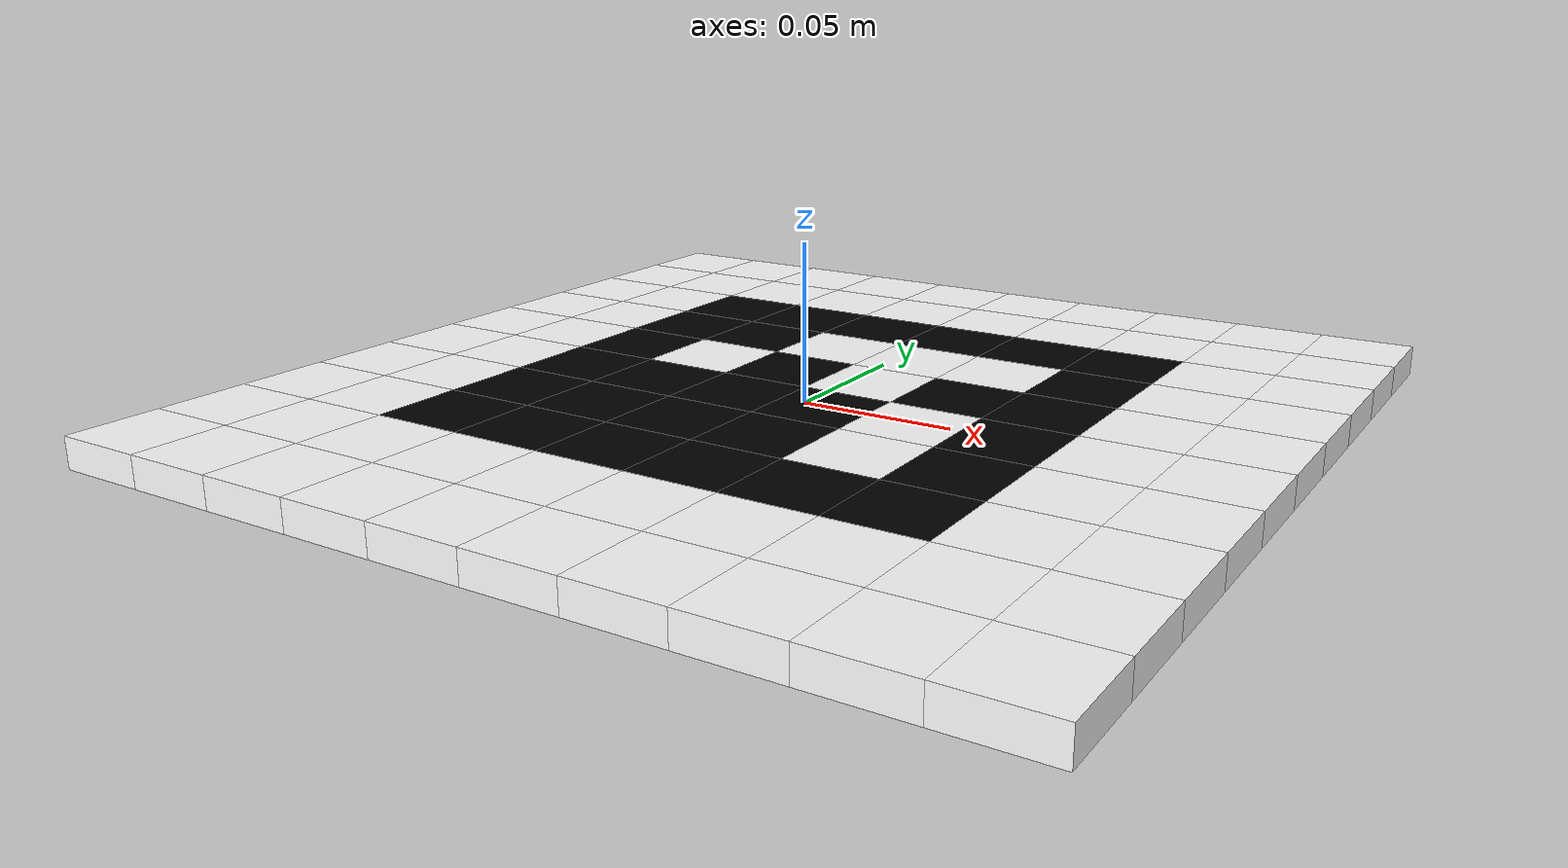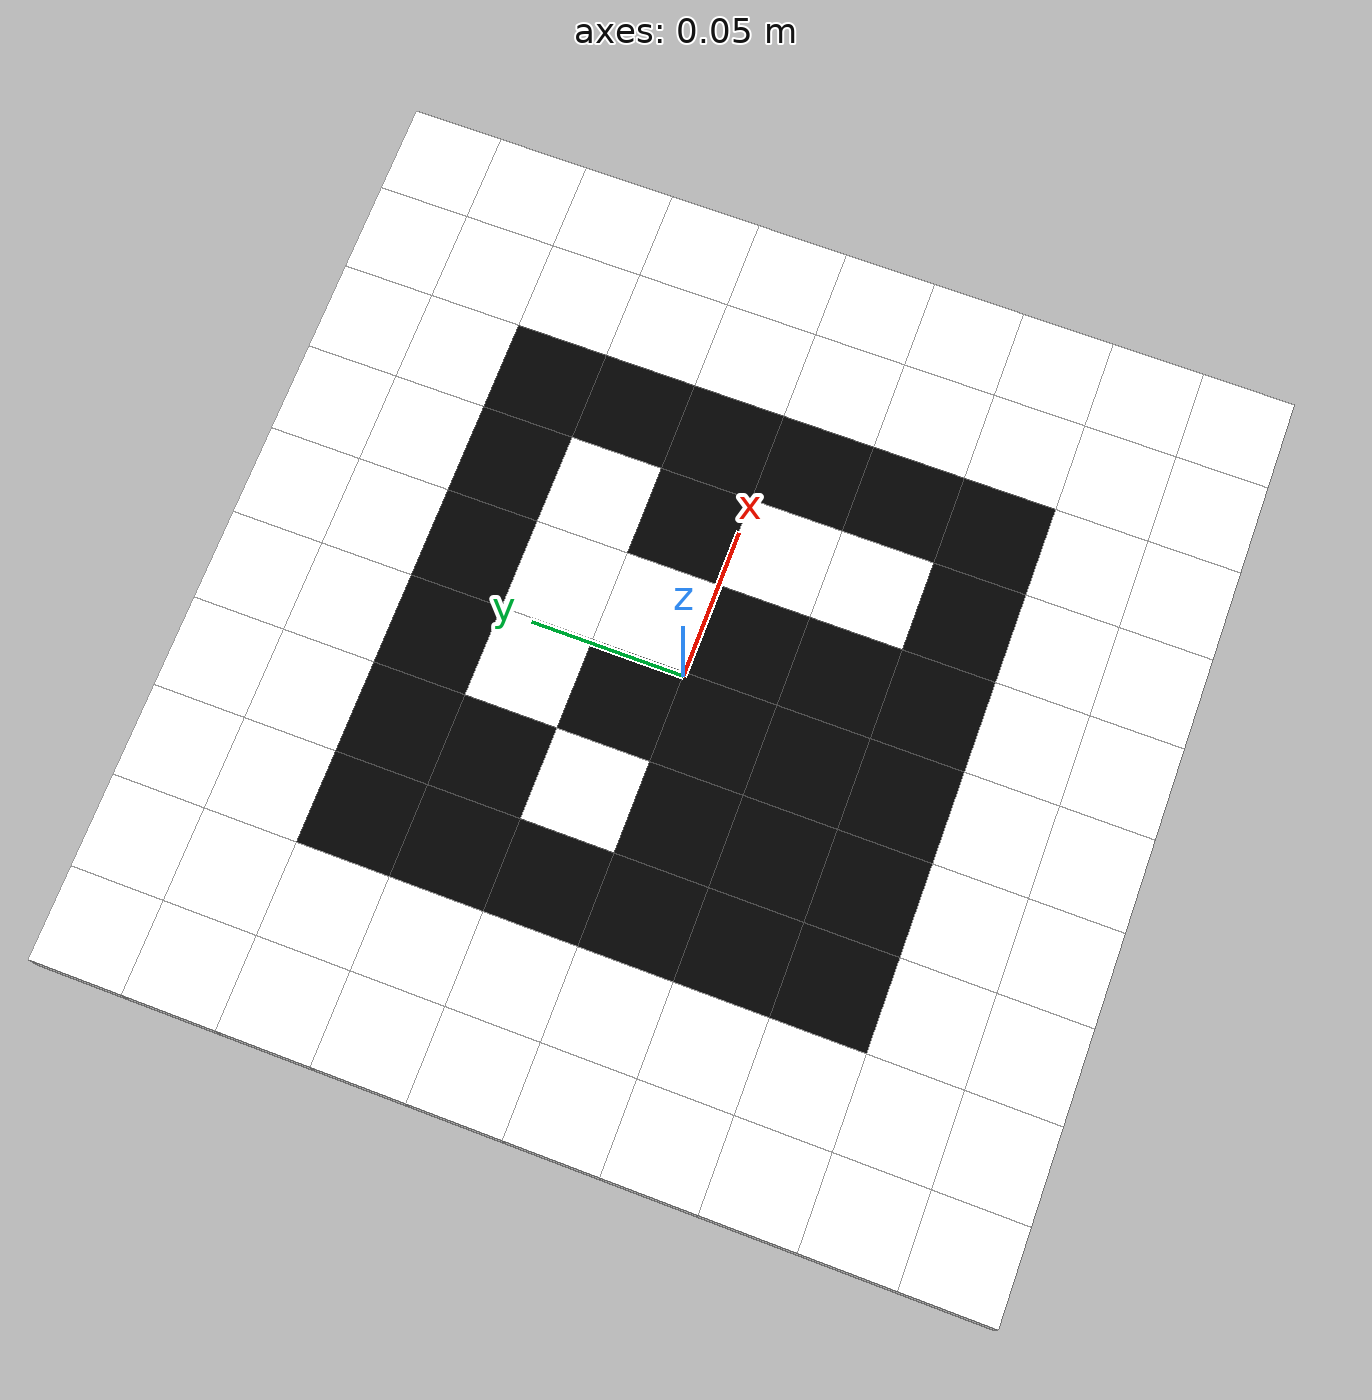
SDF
<sdf version="1.7">
  <model name="aruco_robot">
    <link name="aruco_link">
      <collision name="collision">
        <geometry>
          <box>
            <size>0.005 0.005 0.005</size>
          </box>
        </geometry>
      </collision>
      <inertial>
        <mass>0.0</mass>
        <inertia>
          <ixx>0.0</ixx>
          <iyy>0.0</iyy>
          <izz>0.0</izz>
        </inertia>
      </inertial>
      <visual name="visual">
        <geometry>
          <box>
            <size>0.005 0.005 0.005</size>
          </box>
        </geometry>
        <material>
          <ambient>0 0 0 1</ambient>
          <diffuse>0 0 0 1</diffuse>
        </material>
      </visual>
    </link>

    <link name="arucobox_1_link">
      <pose>-0.135 -0.135 1.653273178848927e-17 3.141592653589793 1.2246467991473532e-16 1.5707963267948968</pose>
      <visual name="visual">
        <geometry>
          <box>
            <size>0.03 0.03 0.01</size>
          </box>
        </geometry>
        <material>
          <ambient>1 1 1 1</ambient>
          <diffuse>1 1 1 1</diffuse>
        </material>
      </visual>
    </link>
    <joint name="arucobox_1_joint" type="fixed">
      <parent>aruco_link</parent>
      <child>arucobox_1_link</child>
    </joint>

    <link name="arucobox_2_link">
      <pose>-0.105 -0.135 1.653273178848927e-17 3.141592653589793 1.2246467991473532e-16 1.5707963267948968</pose>
      <visual name="visual">
        <geometry>
          <box>
            <size>0.03 0.03 0.01</size>
          </box>
        </geometry>
        <material>
          <ambient>1 1 1 1</ambient>
          <diffuse>1 1 1 1</diffuse>
        </material>
      </visual>
    </link>
    <joint name="arucobox_2_joint" type="fixed">
      <parent>aruco_link</parent>
      <child>arucobox_2_link</child>
    </joint>

    <link name="arucobox_3_link">
      <pose>-0.075 -0.135 1.653273178848927e-17 3.141592653589793 1.2246467991473532e-16 1.5707963267948968</pose>
      <visual name="visual">
        <geometry>
          <box>
            <size>0.03 0.03 0.01</size>
          </box>
        </geometry>
        <material>
          <ambient>1 1 1 1</ambient>
          <diffuse>1 1 1 1</diffuse>
        </material>
      </visual>
    </link>
    <joint name="arucobox_3_joint" type="fixed">
      <parent>aruco_link</parent>
      <child>arucobox_3_link</child>
    </joint>

    <link name="arucobox_4_link">
      <pose>-0.045000000000000005 -0.135 1.653273178848927e-17 3.141592653589793 1.2246467991473532e-16 1.5707963267948968</pose>
      <visual name="visual">
        <geometry>
          <box>
            <size>0.03 0.03 0.01</size>
          </box>
        </geometry>
        <material>
          <ambient>1 1 1 1</ambient>
          <diffuse>1 1 1 1</diffuse>
        </material>
      </visual>
    </link>
    <joint name="arucobox_4_joint" type="fixed">
      <parent>aruco_link</parent>
      <child>arucobox_4_link</child>
    </joint>

    <link name="arucobox_5_link">
      <pose>-0.015000000000000005 -0.135 1.653273178848927e-17 3.141592653589793 1.2246467991473532e-16 1.5707963267948968</pose>
      <visual name="visual">
        <geometry>
          <box>
            <size>0.03 0.03 0.01</size>
          </box>
        </geometry>
        <material>
          <ambient>1 1 1 1</ambient>
          <diffuse>1 1 1 1</diffuse>
        </material>
      </visual>
    </link>
    <joint name="arucobox_5_joint" type="fixed">
      <parent>aruco_link</parent>
      <child>arucobox_5_link</child>
    </joint>

    <link name="arucobox_6_link">
      <pose>0.014999999999999994 -0.135 1.653273178848927e-17 3.141592653589793 1.2246467991473532e-16 1.5707963267948968</pose>
      <visual name="visual">
        <geometry>
          <box>
            <size>0.03 0.03 0.01</size>
          </box>
        </geometry>
        <material>
          <ambient>1 1 1 1</ambient>
          <diffuse>1 1 1 1</diffuse>
        </material>
      </visual>
    </link>
    <joint name="arucobox_6_joint" type="fixed">
      <parent>aruco_link</parent>
      <child>arucobox_6_link</child>
    </joint>

    <link name="arucobox_7_link">
      <pose>0.04499999999999999 -0.135 1.653273178848927e-17 3.141592653589793 1.2246467991473532e-16 1.5707963267948968</pose>
      <visual name="visual">
        <geometry>
          <box>
            <size>0.03 0.03 0.01</size>
          </box>
        </geometry>
        <material>
          <ambient>1 1 1 1</ambient>
          <diffuse>1 1 1 1</diffuse>
        </material>
      </visual>
    </link>
    <joint name="arucobox_7_joint" type="fixed">
      <parent>aruco_link</parent>
      <child>arucobox_7_link</child>
    </joint>

    <link name="arucobox_8_link">
      <pose>0.075 -0.135 1.653273178848927e-17 3.141592653589793 1.2246467991473532e-16 1.5707963267948968</pose>
      <visual name="visual">
        <geometry>
          <box>
            <size>0.03 0.03 0.01</size>
          </box>
        </geometry>
        <material>
          <ambient>1 1 1 1</ambient>
          <diffuse>1 1 1 1</diffuse>
        </material>
      </visual>
    </link>
    <joint name="arucobox_8_joint" type="fixed">
      <parent>aruco_link</parent>
      <child>arucobox_8_link</child>
    </joint>

    <link name="arucobox_9_link">
      <pose>0.105 -0.135 1.653273178848927e-17 3.141592653589793 1.2246467991473532e-16 1.5707963267948968</pose>
      <visual name="visual">
        <geometry>
          <box>
            <size>0.03 0.03 0.01</size>
          </box>
        </geometry>
        <material>
          <ambient>1 1 1 1</ambient>
          <diffuse>1 1 1 1</diffuse>
        </material>
      </visual>
    </link>
    <joint name="arucobox_9_joint" type="fixed">
      <parent>aruco_link</parent>
      <child>arucobox_9_link</child>
    </joint>

    <link name="arucobox_10_link">
      <pose>0.135 -0.135 1.653273178848927e-17 3.141592653589793 1.2246467991473532e-16 1.5707963267948968</pose>
      <visual name="visual">
        <geometry>
          <box>
            <size>0.03 0.03 0.01</size>
          </box>
        </geometry>
        <material>
          <ambient>1 1 1 1</ambient>
          <diffuse>1 1 1 1</diffuse>
        </material>
      </visual>
    </link>
    <joint name="arucobox_10_joint" type="fixed">
      <parent>aruco_link</parent>
      <child>arucobox_10_link</child>
    </joint>

    <link name="arucobox_11_link">
      <pose>-0.135 -0.10500000000000002 1.285879139104721e-17 3.141592653589793 1.2246467991473532e-16 1.5707963267948968</pose>
      <visual name="visual">
        <geometry>
          <box>
            <size>0.03 0.03 0.01</size>
          </box>
        </geometry>
        <material>
          <ambient>1 1 1 1</ambient>
          <diffuse>1 1 1 1</diffuse>
        </material>
      </visual>
    </link>
    <joint name="arucobox_11_joint" type="fixed">
      <parent>aruco_link</parent>
      <child>arucobox_11_link</child>
    </joint>

    <link name="arucobox_12_link">
      <pose>-0.10500000000000001 -0.10500000000000001 1.285879139104721e-17 3.141592653589793 1.2246467991473532e-16 1.5707963267948968</pose>
      <visual name="visual">
        <geometry>
          <box>
            <size>0.03 0.03 0.01</size>
          </box>
        </geometry>
        <material>
          <ambient>1 1 1 1</ambient>
          <diffuse>1 1 1 1</diffuse>
        </material>
      </visual>
    </link>
    <joint name="arucobox_12_joint" type="fixed">
      <parent>aruco_link</parent>
      <child>arucobox_12_link</child>
    </joint>

    <link name="arucobox_13_link">
      <pose>-0.07500000000000001 -0.10500000000000001 1.285879139104721e-17 3.141592653589793 1.2246467991473532e-16 1.5707963267948968</pose>
      <visual name="visual">
        <geometry>
          <box>
            <size>0.03 0.03 0.01</size>
          </box>
        </geometry>
        <material>
          <ambient>1 1 1 1</ambient>
          <diffuse>1 1 1 1</diffuse>
        </material>
      </visual>
    </link>
    <joint name="arucobox_13_joint" type="fixed">
      <parent>aruco_link</parent>
      <child>arucobox_13_link</child>
    </joint>

    <link name="arucobox_14_link">
      <pose>-0.045000000000000005 -0.10500000000000001 1.285879139104721e-17 3.141592653589793 1.2246467991473532e-16 1.5707963267948968</pose>
      <visual name="visual">
        <geometry>
          <box>
            <size>0.03 0.03 0.01</size>
          </box>
        </geometry>
        <material>
          <ambient>1 1 1 1</ambient>
          <diffuse>1 1 1 1</diffuse>
        </material>
      </visual>
    </link>
    <joint name="arucobox_14_joint" type="fixed">
      <parent>aruco_link</parent>
      <child>arucobox_14_link</child>
    </joint>

    <link name="arucobox_15_link">
      <pose>-0.015000000000000006 -0.10500000000000001 1.285879139104721e-17 3.141592653589793 1.2246467991473532e-16 1.5707963267948968</pose>
      <visual name="visual">
        <geometry>
          <box>
            <size>0.03 0.03 0.01</size>
          </box>
        </geometry>
        <material>
          <ambient>1 1 1 1</ambient>
          <diffuse>1 1 1 1</diffuse>
        </material>
      </visual>
    </link>
    <joint name="arucobox_15_joint" type="fixed">
      <parent>aruco_link</parent>
      <child>arucobox_15_link</child>
    </joint>

    <link name="arucobox_16_link">
      <pose>0.014999999999999993 -0.10500000000000001 1.285879139104721e-17 3.141592653589793 1.2246467991473532e-16 1.5707963267948968</pose>
      <visual name="visual">
        <geometry>
          <box>
            <size>0.03 0.03 0.01</size>
          </box>
        </geometry>
        <material>
          <ambient>1 1 1 1</ambient>
          <diffuse>1 1 1 1</diffuse>
        </material>
      </visual>
    </link>
    <joint name="arucobox_16_joint" type="fixed">
      <parent>aruco_link</parent>
      <child>arucobox_16_link</child>
    </joint>

    <link name="arucobox_17_link">
      <pose>0.04499999999999999 -0.10500000000000001 1.285879139104721e-17 3.141592653589793 1.2246467991473532e-16 1.5707963267948968</pose>
      <visual name="visual">
        <geometry>
          <box>
            <size>0.03 0.03 0.01</size>
          </box>
        </geometry>
        <material>
          <ambient>1 1 1 1</ambient>
          <diffuse>1 1 1 1</diffuse>
        </material>
      </visual>
    </link>
    <joint name="arucobox_17_joint" type="fixed">
      <parent>aruco_link</parent>
      <child>arucobox_17_link</child>
    </joint>

    <link name="arucobox_18_link">
      <pose>0.07499999999999998 -0.10500000000000001 1.285879139104721e-17 3.141592653589793 1.2246467991473532e-16 1.5707963267948968</pose>
      <visual name="visual">
        <geometry>
          <box>
            <size>0.03 0.03 0.01</size>
          </box>
        </geometry>
        <material>
          <ambient>1 1 1 1</ambient>
          <diffuse>1 1 1 1</diffuse>
        </material>
      </visual>
    </link>
    <joint name="arucobox_18_joint" type="fixed">
      <parent>aruco_link</parent>
      <child>arucobox_18_link</child>
    </joint>

    <link name="arucobox_19_link">
      <pose>0.10499999999999998 -0.10500000000000001 1.285879139104721e-17 3.141592653589793 1.2246467991473532e-16 1.5707963267948968</pose>
      <visual name="visual">
        <geometry>
          <box>
            <size>0.03 0.03 0.01</size>
          </box>
        </geometry>
        <material>
          <ambient>1 1 1 1</ambient>
          <diffuse>1 1 1 1</diffuse>
        </material>
      </visual>
    </link>
    <joint name="arucobox_19_joint" type="fixed">
      <parent>aruco_link</parent>
      <child>arucobox_19_link</child>
    </joint>

    <link name="arucobox_20_link">
      <pose>0.135 -0.105 1.285879139104721e-17 3.141592653589793 1.2246467991473532e-16 1.5707963267948968</pose>
      <visual name="visual">
        <geometry>
          <box>
            <size>0.03 0.03 0.01</size>
          </box>
        </geometry>
        <material>
          <ambient>1 1 1 1</ambient>
          <diffuse>1 1 1 1</diffuse>
        </material>
      </visual>
    </link>
    <joint name="arucobox_20_joint" type="fixed">
      <parent>aruco_link</parent>
      <child>arucobox_20_link</child>
    </joint>

    <link name="arucobox_21_link">
      <pose>-0.135 -0.07500000000000002 9.18485099360515e-18 3.141592653589793 1.2246467991473532e-16 1.5707963267948968</pose>
      <visual name="visual">
        <geometry>
          <box>
            <size>0.03 0.03 0.01</size>
          </box>
        </geometry>
        <material>
          <ambient>1 1 1 1</ambient>
          <diffuse>1 1 1 1</diffuse>
        </material>
      </visual>
    </link>
    <joint name="arucobox_21_joint" type="fixed">
      <parent>aruco_link</parent>
      <child>arucobox_21_link</child>
    </joint>

    <link name="arucobox_22_link">
      <pose>-0.10500000000000001 -0.07500000000000001 9.18485099360515e-18 3.141592653589793 1.2246467991473532e-16 1.5707963267948968</pose>
      <visual name="visual">
        <geometry>
          <box>
            <size>0.03 0.03 0.01</size>
          </box>
        </geometry>
        <material>
          <ambient>1 1 1 1</ambient>
          <diffuse>1 1 1 1</diffuse>
        </material>
      </visual>
    </link>
    <joint name="arucobox_22_joint" type="fixed">
      <parent>aruco_link</parent>
      <child>arucobox_22_link</child>
    </joint>

    <link name="arucobox_23_link">
      <pose>-0.07500000000000001 -0.07500000000000001 9.18485099360515e-18 3.141592653589793 1.2246467991473532e-16 1.5707963267948968</pose>
      <visual name="visual">
        <geometry>
          <box>
            <size>0.03 0.03 0.01</size>
          </box>
        </geometry>
        <material>
          <ambient>0 0 0 1</ambient>
          <diffuse>0 0 0 1</diffuse>
        </material>
      </visual>
    </link>
    <joint name="arucobox_23_joint" type="fixed">
      <parent>aruco_link</parent>
      <child>arucobox_23_link</child>
    </joint>

    <link name="arucobox_24_link">
      <pose>-0.045000000000000005 -0.07500000000000001 9.18485099360515e-18 3.141592653589793 1.2246467991473532e-16 1.5707963267948968</pose>
      <visual name="visual">
        <geometry>
          <box>
            <size>0.03 0.03 0.01</size>
          </box>
        </geometry>
        <material>
          <ambient>0 0 0 1</ambient>
          <diffuse>0 0 0 1</diffuse>
        </material>
      </visual>
    </link>
    <joint name="arucobox_24_joint" type="fixed">
      <parent>aruco_link</parent>
      <child>arucobox_24_link</child>
    </joint>

    <link name="arucobox_25_link">
      <pose>-0.015000000000000008 -0.07500000000000001 9.18485099360515e-18 3.141592653589793 1.2246467991473532e-16 1.5707963267948968</pose>
      <visual name="visual">
        <geometry>
          <box>
            <size>0.03 0.03 0.01</size>
          </box>
        </geometry>
        <material>
          <ambient>0 0 0 1</ambient>
          <diffuse>0 0 0 1</diffuse>
        </material>
      </visual>
    </link>
    <joint name="arucobox_25_joint" type="fixed">
      <parent>aruco_link</parent>
      <child>arucobox_25_link</child>
    </joint>

    <link name="arucobox_26_link">
      <pose>0.01499999999999999 -0.07500000000000001 9.18485099360515e-18 3.141592653589793 1.2246467991473532e-16 1.5707963267948968</pose>
      <visual name="visual">
        <geometry>
          <box>
            <size>0.03 0.03 0.01</size>
          </box>
        </geometry>
        <material>
          <ambient>0 0 0 1</ambient>
          <diffuse>0 0 0 1</diffuse>
        </material>
      </visual>
    </link>
    <joint name="arucobox_26_joint" type="fixed">
      <parent>aruco_link</parent>
      <child>arucobox_26_link</child>
    </joint>

    <link name="arucobox_27_link">
      <pose>0.04499999999999999 -0.07500000000000001 9.18485099360515e-18 3.141592653589793 1.2246467991473532e-16 1.5707963267948968</pose>
      <visual name="visual">
        <geometry>
          <box>
            <size>0.03 0.03 0.01</size>
          </box>
        </geometry>
        <material>
          <ambient>0 0 0 1</ambient>
          <diffuse>0 0 0 1</diffuse>
        </material>
      </visual>
    </link>
    <joint name="arucobox_27_joint" type="fixed">
      <parent>aruco_link</parent>
      <child>arucobox_27_link</child>
    </joint>

    <link name="arucobox_28_link">
      <pose>0.07499999999999998 -0.07500000000000001 9.18485099360515e-18 3.141592653589793 1.2246467991473532e-16 1.5707963267948968</pose>
      <visual name="visual">
        <geometry>
          <box>
            <size>0.03 0.03 0.01</size>
          </box>
        </geometry>
        <material>
          <ambient>0 0 0 1</ambient>
          <diffuse>0 0 0 1</diffuse>
        </material>
      </visual>
    </link>
    <joint name="arucobox_28_joint" type="fixed">
      <parent>aruco_link</parent>
      <child>arucobox_28_link</child>
    </joint>

    <link name="arucobox_29_link">
      <pose>0.10499999999999998 -0.07500000000000001 9.18485099360515e-18 3.141592653589793 1.2246467991473532e-16 1.5707963267948968</pose>
      <visual name="visual">
        <geometry>
          <box>
            <size>0.03 0.03 0.01</size>
          </box>
        </geometry>
        <material>
          <ambient>1 1 1 1</ambient>
          <diffuse>1 1 1 1</diffuse>
        </material>
      </visual>
    </link>
    <joint name="arucobox_29_joint" type="fixed">
      <parent>aruco_link</parent>
      <child>arucobox_29_link</child>
    </joint>

    <link name="arucobox_30_link">
      <pose>0.135 -0.075 9.18485099360515e-18 3.141592653589793 1.2246467991473532e-16 1.5707963267948968</pose>
      <visual name="visual">
        <geometry>
          <box>
            <size>0.03 0.03 0.01</size>
          </box>
        </geometry>
        <material>
          <ambient>1 1 1 1</ambient>
          <diffuse>1 1 1 1</diffuse>
        </material>
      </visual>
    </link>
    <joint name="arucobox_30_joint" type="fixed">
      <parent>aruco_link</parent>
      <child>arucobox_30_link</child>
    </joint>

    <link name="arucobox_31_link">
      <pose>-0.135 -0.04500000000000002 5.510910596163091e-18 3.141592653589793 1.2246467991473532e-16 1.5707963267948968</pose>
      <visual name="visual">
        <geometry>
          <box>
            <size>0.03 0.03 0.01</size>
          </box>
        </geometry>
        <material>
          <ambient>1 1 1 1</ambient>
          <diffuse>1 1 1 1</diffuse>
        </material>
      </visual>
    </link>
    <joint name="arucobox_31_joint" type="fixed">
      <parent>aruco_link</parent>
      <child>arucobox_31_link</child>
    </joint>

    <link name="arucobox_32_link">
      <pose>-0.10500000000000001 -0.04500000000000002 5.510910596163091e-18 3.141592653589793 1.2246467991473532e-16 1.5707963267948968</pose>
      <visual name="visual">
        <geometry>
          <box>
            <size>0.03 0.03 0.01</size>
          </box>
        </geometry>
        <material>
          <ambient>1 1 1 1</ambient>
          <diffuse>1 1 1 1</diffuse>
        </material>
      </visual>
    </link>
    <joint name="arucobox_32_joint" type="fixed">
      <parent>aruco_link</parent>
      <child>arucobox_32_link</child>
    </joint>

    <link name="arucobox_33_link">
      <pose>-0.07500000000000001 -0.04500000000000002 5.510910596163091e-18 3.141592653589793 1.2246467991473532e-16 1.5707963267948968</pose>
      <visual name="visual">
        <geometry>
          <box>
            <size>0.03 0.03 0.01</size>
          </box>
        </geometry>
        <material>
          <ambient>0 0 0 1</ambient>
          <diffuse>0 0 0 1</diffuse>
        </material>
      </visual>
    </link>
    <joint name="arucobox_33_joint" type="fixed">
      <parent>aruco_link</parent>
      <child>arucobox_33_link</child>
    </joint>

    <link name="arucobox_34_link">
      <pose>-0.04500000000000001 -0.04500000000000001 5.510910596163091e-18 3.141592653589793 1.2246467991473532e-16 1.5707963267948968</pose>
      <visual name="visual">
        <geometry>
          <box>
            <size>0.03 0.03 0.01</size>
          </box>
        </geometry>
        <material>
          <ambient>0 0 0 1</ambient>
          <diffuse>0 0 0 1</diffuse>
        </material>
      </visual>
    </link>
    <joint name="arucobox_34_joint" type="fixed">
      <parent>aruco_link</parent>
      <child>arucobox_34_link</child>
    </joint>

    <link name="arucobox_35_link">
      <pose>-0.01500000000000001 -0.04500000000000001 5.510910596163091e-18 3.141592653589793 1.2246467991473532e-16 1.5707963267948968</pose>
      <visual name="visual">
        <geometry>
          <box>
            <size>0.03 0.03 0.01</size>
          </box>
        </geometry>
        <material>
          <ambient>0 0 0 1</ambient>
          <diffuse>0 0 0 1</diffuse>
        </material>
      </visual>
    </link>
    <joint name="arucobox_35_joint" type="fixed">
      <parent>aruco_link</parent>
      <child>arucobox_35_link</child>
    </joint>

    <link name="arucobox_36_link">
      <pose>0.014999999999999989 -0.04500000000000001 5.510910596163091e-18 3.141592653589793 1.2246467991473532e-16 1.5707963267948968</pose>
      <visual name="visual">
        <geometry>
          <box>
            <size>0.03 0.03 0.01</size>
          </box>
        </geometry>
        <material>
          <ambient>0 0 0 1</ambient>
          <diffuse>0 0 0 1</diffuse>
        </material>
      </visual>
    </link>
    <joint name="arucobox_36_joint" type="fixed">
      <parent>aruco_link</parent>
      <child>arucobox_36_link</child>
    </joint>

    <link name="arucobox_37_link">
      <pose>0.044999999999999984 -0.04500000000000001 5.510910596163091e-18 3.141592653589793 1.2246467991473532e-16 1.5707963267948968</pose>
      <visual name="visual">
        <geometry>
          <box>
            <size>0.03 0.03 0.01</size>
          </box>
        </geometry>
        <material>
          <ambient>1 1 1 1</ambient>
          <diffuse>1 1 1 1</diffuse>
        </material>
      </visual>
    </link>
    <joint name="arucobox_37_joint" type="fixed">
      <parent>aruco_link</parent>
      <child>arucobox_37_link</child>
    </joint>

    <link name="arucobox_38_link">
      <pose>0.07499999999999998 -0.045000000000000005 5.510910596163091e-18 3.141592653589793 1.2246467991473532e-16 1.5707963267948968</pose>
      <visual name="visual">
        <geometry>
          <box>
            <size>0.03 0.03 0.01</size>
          </box>
        </geometry>
        <material>
          <ambient>0 0 0 1</ambient>
          <diffuse>0 0 0 1</diffuse>
        </material>
      </visual>
    </link>
    <joint name="arucobox_38_joint" type="fixed">
      <parent>aruco_link</parent>
      <child>arucobox_38_link</child>
    </joint>

    <link name="arucobox_39_link">
      <pose>0.10499999999999998 -0.045000000000000005 5.510910596163091e-18 3.141592653589793 1.2246467991473532e-16 1.5707963267948968</pose>
      <visual name="visual">
        <geometry>
          <box>
            <size>0.03 0.03 0.01</size>
          </box>
        </geometry>
        <material>
          <ambient>1 1 1 1</ambient>
          <diffuse>1 1 1 1</diffuse>
        </material>
      </visual>
    </link>
    <joint name="arucobox_39_joint" type="fixed">
      <parent>aruco_link</parent>
      <child>arucobox_39_link</child>
    </joint>

    <link name="arucobox_40_link">
      <pose>0.135 -0.045000000000000005 5.510910596163091e-18 3.141592653589793 1.2246467991473532e-16 1.5707963267948968</pose>
      <visual name="visual">
        <geometry>
          <box>
            <size>0.03 0.03 0.01</size>
          </box>
        </geometry>
        <material>
          <ambient>1 1 1 1</ambient>
          <diffuse>1 1 1 1</diffuse>
        </material>
      </visual>
    </link>
    <joint name="arucobox_40_joint" type="fixed">
      <parent>aruco_link</parent>
      <child>arucobox_40_link</child>
    </joint>

    <link name="arucobox_41_link">
      <pose>-0.135 -0.015000000000000022 1.8369701987210315e-18 3.141592653589793 1.2246467991473532e-16 1.5707963267948968</pose>
      <visual name="visual">
        <geometry>
          <box>
            <size>0.03 0.03 0.01</size>
          </box>
        </geometry>
        <material>
          <ambient>1 1 1 1</ambient>
          <diffuse>1 1 1 1</diffuse>
        </material>
      </visual>
    </link>
    <joint name="arucobox_41_joint" type="fixed">
      <parent>aruco_link</parent>
      <child>arucobox_41_link</child>
    </joint>

    <link name="arucobox_42_link">
      <pose>-0.10500000000000001 -0.01500000000000002 1.8369701987210315e-18 3.141592653589793 1.2246467991473532e-16 1.5707963267948968</pose>
      <visual name="visual">
        <geometry>
          <box>
            <size>0.03 0.03 0.01</size>
          </box>
        </geometry>
        <material>
          <ambient>1 1 1 1</ambient>
          <diffuse>1 1 1 1</diffuse>
        </material>
      </visual>
    </link>
    <joint name="arucobox_42_joint" type="fixed">
      <parent>aruco_link</parent>
      <child>arucobox_42_link</child>
    </joint>

    <link name="arucobox_43_link">
      <pose>-0.07500000000000001 -0.015000000000000019 1.8369701987210315e-18 3.141592653589793 1.2246467991473532e-16 1.5707963267948968</pose>
      <visual name="visual">
        <geometry>
          <box>
            <size>0.03 0.03 0.01</size>
          </box>
        </geometry>
        <material>
          <ambient>0 0 0 1</ambient>
          <diffuse>0 0 0 1</diffuse>
        </material>
      </visual>
    </link>
    <joint name="arucobox_43_joint" type="fixed">
      <parent>aruco_link</parent>
      <child>arucobox_43_link</child>
    </joint>

    <link name="arucobox_44_link">
      <pose>-0.04500000000000001 -0.015000000000000017 1.8369701987210315e-18 3.141592653589793 1.2246467991473532e-16 1.5707963267948968</pose>
      <visual name="visual">
        <geometry>
          <box>
            <size>0.03 0.03 0.01</size>
          </box>
        </geometry>
        <material>
          <ambient>0 0 0 1</ambient>
          <diffuse>0 0 0 1</diffuse>
        </material>
      </visual>
    </link>
    <joint name="arucobox_44_joint" type="fixed">
      <parent>aruco_link</parent>
      <child>arucobox_44_link</child>
    </joint>

    <link name="arucobox_45_link">
      <pose>-0.015000000000000012 -0.015000000000000015 1.8369701987210315e-18 3.141592653589793 1.2246467991473532e-16 1.5707963267948968</pose>
      <visual name="visual">
        <geometry>
          <box>
            <size>0.03 0.03 0.01</size>
          </box>
        </geometry>
        <material>
          <ambient>0 0 0 1</ambient>
          <diffuse>0 0 0 1</diffuse>
        </material>
      </visual>
    </link>
    <joint name="arucobox_45_joint" type="fixed">
      <parent>aruco_link</parent>
      <child>arucobox_45_link</child>
    </joint>

    <link name="arucobox_46_link">
      <pose>0.014999999999999987 -0.015000000000000012 1.8369701987210315e-18 3.141592653589793 1.2246467991473532e-16 1.5707963267948968</pose>
      <visual name="visual">
        <geometry>
          <box>
            <size>0.03 0.03 0.01</size>
          </box>
        </geometry>
        <material>
          <ambient>0 0 0 1</ambient>
          <diffuse>0 0 0 1</diffuse>
        </material>
      </visual>
    </link>
    <joint name="arucobox_46_joint" type="fixed">
      <parent>aruco_link</parent>
      <child>arucobox_46_link</child>
    </joint>

    <link name="arucobox_47_link">
      <pose>0.044999999999999984 -0.01500000000000001 1.8369701987210315e-18 3.141592653589793 1.2246467991473532e-16 1.5707963267948968</pose>
      <visual name="visual">
        <geometry>
          <box>
            <size>0.03 0.03 0.01</size>
          </box>
        </geometry>
        <material>
          <ambient>1 1 1 1</ambient>
          <diffuse>1 1 1 1</diffuse>
        </material>
      </visual>
    </link>
    <joint name="arucobox_47_joint" type="fixed">
      <parent>aruco_link</parent>
      <child>arucobox_47_link</child>
    </joint>

    <link name="arucobox_48_link">
      <pose>0.07499999999999998 -0.015000000000000008 1.8369701987210315e-18 3.141592653589793 1.2246467991473532e-16 1.5707963267948968</pose>
      <visual name="visual">
        <geometry>
          <box>
            <size>0.03 0.03 0.01</size>
          </box>
        </geometry>
        <material>
          <ambient>0 0 0 1</ambient>
          <diffuse>0 0 0 1</diffuse>
        </material>
      </visual>
    </link>
    <joint name="arucobox_48_joint" type="fixed">
      <parent>aruco_link</parent>
      <child>arucobox_48_link</child>
    </joint>

    <link name="arucobox_49_link">
      <pose>0.10499999999999998 -0.015000000000000006 1.8369701987210315e-18 3.141592653589793 1.2246467991473532e-16 1.5707963267948968</pose>
      <visual name="visual">
        <geometry>
          <box>
            <size>0.03 0.03 0.01</size>
          </box>
        </geometry>
        <material>
          <ambient>1 1 1 1</ambient>
          <diffuse>1 1 1 1</diffuse>
        </material>
      </visual>
    </link>
    <joint name="arucobox_49_joint" type="fixed">
      <parent>aruco_link</parent>
      <child>arucobox_49_link</child>
    </joint>

    <link name="arucobox_50_link">
      <pose>0.135 -0.015000000000000005 1.8369701987210315e-18 3.141592653589793 1.2246467991473532e-16 1.5707963267948968</pose>
      <visual name="visual">
        <geometry>
          <box>
            <size>0.03 0.03 0.01</size>
          </box>
        </geometry>
        <material>
          <ambient>1 1 1 1</ambient>
          <diffuse>1 1 1 1</diffuse>
        </material>
      </visual>
    </link>
    <joint name="arucobox_50_joint" type="fixed">
      <parent>aruco_link</parent>
      <child>arucobox_50_link</child>
    </joint>

    <link name="arucobox_51_link">
      <pose>-0.135 0.014999999999999977 -1.836970198721028e-18 3.141592653589793 1.2246467991473532e-16 1.5707963267948968</pose>
      <visual name="visual">
        <geometry>
          <box>
            <size>0.03 0.03 0.01</size>
          </box>
        </geometry>
        <material>
          <ambient>1 1 1 1</ambient>
          <diffuse>1 1 1 1</diffuse>
        </material>
      </visual>
    </link>
    <joint name="arucobox_51_joint" type="fixed">
      <parent>aruco_link</parent>
      <child>arucobox_51_link</child>
    </joint>

    <link name="arucobox_52_link">
      <pose>-0.10500000000000001 0.014999999999999979 -1.836970198721028e-18 3.141592653589793 1.2246467991473532e-16 1.5707963267948968</pose>
      <visual name="visual">
        <geometry>
          <box>
            <size>0.03 0.03 0.01</size>
          </box>
        </geometry>
        <material>
          <ambient>1 1 1 1</ambient>
          <diffuse>1 1 1 1</diffuse>
        </material>
      </visual>
    </link>
    <joint name="arucobox_52_joint" type="fixed">
      <parent>aruco_link</parent>
      <child>arucobox_52_link</child>
    </joint>

    <link name="arucobox_53_link">
      <pose>-0.07500000000000001 0.01499999999999998 -1.836970198721028e-18 3.141592653589793 1.2246467991473532e-16 1.5707963267948968</pose>
      <visual name="visual">
        <geometry>
          <box>
            <size>0.03 0.03 0.01</size>
          </box>
        </geometry>
        <material>
          <ambient>0 0 0 1</ambient>
          <diffuse>0 0 0 1</diffuse>
        </material>
      </visual>
    </link>
    <joint name="arucobox_53_joint" type="fixed">
      <parent>aruco_link</parent>
      <child>arucobox_53_link</child>
    </joint>

    <link name="arucobox_54_link">
      <pose>-0.04500000000000001 0.014999999999999982 -1.836970198721028e-18 3.141592653589793 1.2246467991473532e-16 1.5707963267948968</pose>
      <visual name="visual">
        <geometry>
          <box>
            <size>0.03 0.03 0.01</size>
          </box>
        </geometry>
        <material>
          <ambient>1 1 1 1</ambient>
          <diffuse>1 1 1 1</diffuse>
        </material>
      </visual>
    </link>
    <joint name="arucobox_54_joint" type="fixed">
      <parent>aruco_link</parent>
      <child>arucobox_54_link</child>
    </joint>

    <link name="arucobox_55_link">
      <pose>-0.015000000000000015 0.014999999999999984 -1.836970198721028e-18 3.141592653589793 1.2246467991473532e-16 1.5707963267948968</pose>
      <visual name="visual">
        <geometry>
          <box>
            <size>0.03 0.03 0.01</size>
          </box>
        </geometry>
        <material>
          <ambient>0 0 0 1</ambient>
          <diffuse>0 0 0 1</diffuse>
        </material>
      </visual>
    </link>
    <joint name="arucobox_55_joint" type="fixed">
      <parent>aruco_link</parent>
      <child>arucobox_55_link</child>
    </joint>

    <link name="arucobox_56_link">
      <pose>0.014999999999999984 0.014999999999999987 -1.836970198721028e-18 3.141592653589793 1.2246467991473532e-16 1.5707963267948968</pose>
      <visual name="visual">
        <geometry>
          <box>
            <size>0.03 0.03 0.01</size>
          </box>
        </geometry>
        <material>
          <ambient>1 1 1 1</ambient>
          <diffuse>1 1 1 1</diffuse>
        </material>
      </visual>
    </link>
    <joint name="arucobox_56_joint" type="fixed">
      <parent>aruco_link</parent>
      <child>arucobox_56_link</child>
    </joint>

    <link name="arucobox_57_link">
      <pose>0.044999999999999984 0.014999999999999989 -1.836970198721028e-18 3.141592653589793 1.2246467991473532e-16 1.5707963267948968</pose>
      <visual name="visual">
        <geometry>
          <box>
            <size>0.03 0.03 0.01</size>
          </box>
        </geometry>
        <material>
          <ambient>0 0 0 1</ambient>
          <diffuse>0 0 0 1</diffuse>
        </material>
      </visual>
    </link>
    <joint name="arucobox_57_joint" type="fixed">
      <parent>aruco_link</parent>
      <child>arucobox_57_link</child>
    </joint>

    <link name="arucobox_58_link">
      <pose>0.07499999999999998 0.01499999999999999 -1.836970198721028e-18 3.141592653589793 1.2246467991473532e-16 1.5707963267948968</pose>
      <visual name="visual">
        <geometry>
          <box>
            <size>0.03 0.03 0.01</size>
          </box>
        </geometry>
        <material>
          <ambient>0 0 0 1</ambient>
          <diffuse>0 0 0 1</diffuse>
        </material>
      </visual>
    </link>
    <joint name="arucobox_58_joint" type="fixed">
      <parent>aruco_link</parent>
      <child>arucobox_58_link</child>
    </joint>

    <link name="arucobox_59_link">
      <pose>0.10499999999999998 0.014999999999999993 -1.836970198721028e-18 3.141592653589793 1.2246467991473532e-16 1.5707963267948968</pose>
      <visual name="visual">
        <geometry>
          <box>
            <size>0.03 0.03 0.01</size>
          </box>
        </geometry>
        <material>
          <ambient>1 1 1 1</ambient>
          <diffuse>1 1 1 1</diffuse>
        </material>
      </visual>
    </link>
    <joint name="arucobox_59_joint" type="fixed">
      <parent>aruco_link</parent>
      <child>arucobox_59_link</child>
    </joint>

    <link name="arucobox_60_link">
      <pose>0.135 0.014999999999999994 -1.836970198721028e-18 3.141592653589793 1.2246467991473532e-16 1.5707963267948968</pose>
      <visual name="visual">
        <geometry>
          <box>
            <size>0.03 0.03 0.01</size>
          </box>
        </geometry>
        <material>
          <ambient>1 1 1 1</ambient>
          <diffuse>1 1 1 1</diffuse>
        </material>
      </visual>
    </link>
    <joint name="arucobox_60_joint" type="fixed">
      <parent>aruco_link</parent>
      <child>arucobox_60_link</child>
    </joint>

    <link name="arucobox_61_link">
      <pose>-0.135 0.04499999999999998 -5.510910596163087e-18 3.141592653589793 1.2246467991473532e-16 1.5707963267948968</pose>
      <visual name="visual">
        <geometry>
          <box>
            <size>0.03 0.03 0.01</size>
          </box>
        </geometry>
        <material>
          <ambient>1 1 1 1</ambient>
          <diffuse>1 1 1 1</diffuse>
        </material>
      </visual>
    </link>
    <joint name="arucobox_61_joint" type="fixed">
      <parent>aruco_link</parent>
      <child>arucobox_61_link</child>
    </joint>

    <link name="arucobox_62_link">
      <pose>-0.10500000000000001 0.04499999999999998 -5.510910596163087e-18 3.141592653589793 1.2246467991473532e-16 1.5707963267948968</pose>
      <visual name="visual">
        <geometry>
          <box>
            <size>0.03 0.03 0.01</size>
          </box>
        </geometry>
        <material>
          <ambient>1 1 1 1</ambient>
          <diffuse>1 1 1 1</diffuse>
        </material>
      </visual>
    </link>
    <joint name="arucobox_62_joint" type="fixed">
      <parent>aruco_link</parent>
      <child>arucobox_62_link</child>
    </joint>

    <link name="arucobox_63_link">
      <pose>-0.07500000000000001 0.04499999999999998 -5.510910596163087e-18 3.141592653589793 1.2246467991473532e-16 1.5707963267948968</pose>
      <visual name="visual">
        <geometry>
          <box>
            <size>0.03 0.03 0.01</size>
          </box>
        </geometry>
        <material>
          <ambient>0 0 0 1</ambient>
          <diffuse>0 0 0 1</diffuse>
        </material>
      </visual>
    </link>
    <joint name="arucobox_63_joint" type="fixed">
      <parent>aruco_link</parent>
      <child>arucobox_63_link</child>
    </joint>

    <link name="arucobox_64_link">
      <pose>-0.04500000000000001 0.044999999999999984 -5.510910596163087e-18 3.141592653589793 1.2246467991473532e-16 1.5707963267948968</pose>
      <visual name="visual">
        <geometry>
          <box>
            <size>0.03 0.03 0.01</size>
          </box>
        </geometry>
        <material>
          <ambient>0 0 0 1</ambient>
          <diffuse>0 0 0 1</diffuse>
        </material>
      </visual>
    </link>
    <joint name="arucobox_64_joint" type="fixed">
      <parent>aruco_link</parent>
      <child>arucobox_64_link</child>
    </joint>

    <link name="arucobox_65_link">
      <pose>-0.015000000000000017 0.044999999999999984 -5.510910596163087e-18 3.141592653589793 1.2246467991473532e-16 1.5707963267948968</pose>
      <visual name="visual">
        <geometry>
          <box>
            <size>0.03 0.03 0.01</size>
          </box>
        </geometry>
        <material>
          <ambient>1 1 1 1</ambient>
          <diffuse>1 1 1 1</diffuse>
        </material>
      </visual>
    </link>
    <joint name="arucobox_65_joint" type="fixed">
      <parent>aruco_link</parent>
      <child>arucobox_65_link</child>
    </joint>

    <link name="arucobox_66_link">
      <pose>0.014999999999999982 0.044999999999999984 -5.510910596163087e-18 3.141592653589793 1.2246467991473532e-16 1.5707963267948968</pose>
      <visual name="visual">
        <geometry>
          <box>
            <size>0.03 0.03 0.01</size>
          </box>
        </geometry>
        <material>
          <ambient>1 1 1 1</ambient>
          <diffuse>1 1 1 1</diffuse>
        </material>
      </visual>
    </link>
    <joint name="arucobox_66_joint" type="fixed">
      <parent>aruco_link</parent>
      <child>arucobox_66_link</child>
    </joint>

    <link name="arucobox_67_link">
      <pose>0.044999999999999984 0.044999999999999984 -5.510910596163087e-18 3.141592653589793 1.2246467991473532e-16 1.5707963267948968</pose>
      <visual name="visual">
        <geometry>
          <box>
            <size>0.03 0.03 0.01</size>
          </box>
        </geometry>
        <material>
          <ambient>1 1 1 1</ambient>
          <diffuse>1 1 1 1</diffuse>
        </material>
      </visual>
    </link>
    <joint name="arucobox_67_joint" type="fixed">
      <parent>aruco_link</parent>
      <child>arucobox_67_link</child>
    </joint>

    <link name="arucobox_68_link">
      <pose>0.07499999999999998 0.04499999999999999 -5.510910596163087e-18 3.141592653589793 1.2246467991473532e-16 1.5707963267948968</pose>
      <visual name="visual">
        <geometry>
          <box>
            <size>0.03 0.03 0.01</size>
          </box>
        </geometry>
        <material>
          <ambient>0 0 0 1</ambient>
          <diffuse>0 0 0 1</diffuse>
        </material>
      </visual>
    </link>
    <joint name="arucobox_68_joint" type="fixed">
      <parent>aruco_link</parent>
      <child>arucobox_68_link</child>
    </joint>

    <link name="arucobox_69_link">
      <pose>0.10499999999999998 0.04499999999999999 -5.510910596163087e-18 3.141592653589793 1.2246467991473532e-16 1.5707963267948968</pose>
      <visual name="visual">
        <geometry>
          <box>
            <size>0.03 0.03 0.01</size>
          </box>
        </geometry>
        <material>
          <ambient>1 1 1 1</ambient>
          <diffuse>1 1 1 1</diffuse>
        </material>
      </visual>
    </link>
    <joint name="arucobox_69_joint" type="fixed">
      <parent>aruco_link</parent>
      <child>arucobox_69_link</child>
    </joint>

    <link name="arucobox_70_link">
      <pose>0.135 0.04499999999999999 -5.510910596163087e-18 3.141592653589793 1.2246467991473532e-16 1.5707963267948968</pose>
      <visual name="visual">
        <geometry>
          <box>
            <size>0.03 0.03 0.01</size>
          </box>
        </geometry>
        <material>
          <ambient>1 1 1 1</ambient>
          <diffuse>1 1 1 1</diffuse>
        </material>
      </visual>
    </link>
    <joint name="arucobox_70_joint" type="fixed">
      <parent>aruco_link</parent>
      <child>arucobox_70_link</child>
    </joint>

    <link name="arucobox_71_link">
      <pose>-0.135 0.07499999999999997 -9.184850993605147e-18 3.141592653589793 1.2246467991473532e-16 1.5707963267948968</pose>
      <visual name="visual">
        <geometry>
          <box>
            <size>0.03 0.03 0.01</size>
          </box>
        </geometry>
        <material>
          <ambient>1 1 1 1</ambient>
          <diffuse>1 1 1 1</diffuse>
        </material>
      </visual>
    </link>
    <joint name="arucobox_71_joint" type="fixed">
      <parent>aruco_link</parent>
      <child>arucobox_71_link</child>
    </joint>

    <link name="arucobox_72_link">
      <pose>-0.10500000000000001 0.07499999999999998 -9.184850993605147e-18 3.141592653589793 1.2246467991473532e-16 1.5707963267948968</pose>
      <visual name="visual">
        <geometry>
          <box>
            <size>0.03 0.03 0.01</size>
          </box>
        </geometry>
        <material>
          <ambient>1 1 1 1</ambient>
          <diffuse>1 1 1 1</diffuse>
        </material>
      </visual>
    </link>
    <joint name="arucobox_72_joint" type="fixed">
      <parent>aruco_link</parent>
      <child>arucobox_72_link</child>
    </joint>

    <link name="arucobox_73_link">
      <pose>-0.07500000000000001 0.07499999999999998 -9.184850993605147e-18 3.141592653589793 1.2246467991473532e-16 1.5707963267948968</pose>
      <visual name="visual">
        <geometry>
          <box>
            <size>0.03 0.03 0.01</size>
          </box>
        </geometry>
        <material>
          <ambient>0 0 0 1</ambient>
          <diffuse>0 0 0 1</diffuse>
        </material>
      </visual>
    </link>
    <joint name="arucobox_73_joint" type="fixed">
      <parent>aruco_link</parent>
      <child>arucobox_73_link</child>
    </joint>

    <link name="arucobox_74_link">
      <pose>-0.04500000000000002 0.07499999999999998 -9.184850993605147e-18 3.141592653589793 1.2246467991473532e-16 1.5707963267948968</pose>
      <visual name="visual">
        <geometry>
          <box>
            <size>0.03 0.03 0.01</size>
          </box>
        </geometry>
        <material>
          <ambient>0 0 0 1</ambient>
          <diffuse>0 0 0 1</diffuse>
        </material>
      </visual>
    </link>
    <joint name="arucobox_74_joint" type="fixed">
      <parent>aruco_link</parent>
      <child>arucobox_74_link</child>
    </joint>

    <link name="arucobox_75_link">
      <pose>-0.015000000000000019 0.07499999999999998 -9.184850993605147e-18 3.141592653589793 1.2246467991473532e-16 1.5707963267948968</pose>
      <visual name="visual">
        <geometry>
          <box>
            <size>0.03 0.03 0.01</size>
          </box>
        </geometry>
        <material>
          <ambient>0 0 0 1</ambient>
          <diffuse>0 0 0 1</diffuse>
        </material>
      </visual>
    </link>
    <joint name="arucobox_75_joint" type="fixed">
      <parent>aruco_link</parent>
      <child>arucobox_75_link</child>
    </joint>

    <link name="arucobox_76_link">
      <pose>0.01499999999999998 0.07499999999999998 -9.184850993605147e-18 3.141592653589793 1.2246467991473532e-16 1.5707963267948968</pose>
      <visual name="visual">
        <geometry>
          <box>
            <size>0.03 0.03 0.01</size>
          </box>
        </geometry>
        <material>
          <ambient>0 0 0 1</ambient>
          <diffuse>0 0 0 1</diffuse>
        </material>
      </visual>
    </link>
    <joint name="arucobox_76_joint" type="fixed">
      <parent>aruco_link</parent>
      <child>arucobox_76_link</child>
    </joint>

    <link name="arucobox_77_link">
      <pose>0.04499999999999998 0.07499999999999998 -9.184850993605147e-18 3.141592653589793 1.2246467991473532e-16 1.5707963267948968</pose>
      <visual name="visual">
        <geometry>
          <box>
            <size>0.03 0.03 0.01</size>
          </box>
        </geometry>
        <material>
          <ambient>0 0 0 1</ambient>
          <diffuse>0 0 0 1</diffuse>
        </material>
      </visual>
    </link>
    <joint name="arucobox_77_joint" type="fixed">
      <parent>aruco_link</parent>
      <child>arucobox_77_link</child>
    </joint>

    <link name="arucobox_78_link">
      <pose>0.07499999999999998 0.07499999999999998 -9.184850993605147e-18 3.141592653589793 1.2246467991473532e-16 1.5707963267948968</pose>
      <visual name="visual">
        <geometry>
          <box>
            <size>0.03 0.03 0.01</size>
          </box>
        </geometry>
        <material>
          <ambient>0 0 0 1</ambient>
          <diffuse>0 0 0 1</diffuse>
        </material>
      </visual>
    </link>
    <joint name="arucobox_78_joint" type="fixed">
      <parent>aruco_link</parent>
      <child>arucobox_78_link</child>
    </joint>

    <link name="arucobox_79_link">
      <pose>0.10499999999999998 0.07499999999999998 -9.184850993605147e-18 3.141592653589793 1.2246467991473532e-16 1.5707963267948968</pose>
      <visual name="visual">
        <geometry>
          <box>
            <size>0.03 0.03 0.01</size>
          </box>
        </geometry>
        <material>
          <ambient>1 1 1 1</ambient>
          <diffuse>1 1 1 1</diffuse>
        </material>
      </visual>
    </link>
    <joint name="arucobox_79_joint" type="fixed">
      <parent>aruco_link</parent>
      <child>arucobox_79_link</child>
    </joint>

    <link name="arucobox_80_link">
      <pose>0.135 0.075 -9.184850993605147e-18 3.141592653589793 1.2246467991473532e-16 1.5707963267948968</pose>
      <visual name="visual">
        <geometry>
          <box>
            <size>0.03 0.03 0.01</size>
          </box>
        </geometry>
        <material>
          <ambient>1 1 1 1</ambient>
          <diffuse>1 1 1 1</diffuse>
        </material>
      </visual>
    </link>
    <joint name="arucobox_80_joint" type="fixed">
      <parent>aruco_link</parent>
      <child>arucobox_80_link</child>
    </joint>

    <link name="arucobox_81_link">
      <pose>-0.135 0.10499999999999997 -1.2858791391047206e-17 3.141592653589793 1.2246467991473532e-16 1.5707963267948968</pose>
      <visual name="visual">
        <geometry>
          <box>
            <size>0.03 0.03 0.01</size>
          </box>
        </geometry>
        <material>
          <ambient>1 1 1 1</ambient>
          <diffuse>1 1 1 1</diffuse>
        </material>
      </visual>
    </link>
    <joint name="arucobox_81_joint" type="fixed">
      <parent>aruco_link</parent>
      <child>arucobox_81_link</child>
    </joint>

    <link name="arucobox_82_link">
      <pose>-0.10500000000000001 0.10499999999999998 -1.2858791391047206e-17 3.141592653589793 1.2246467991473532e-16 1.5707963267948968</pose>
      <visual name="visual">
        <geometry>
          <box>
            <size>0.03 0.03 0.01</size>
          </box>
        </geometry>
        <material>
          <ambient>1 1 1 1</ambient>
          <diffuse>1 1 1 1</diffuse>
        </material>
      </visual>
    </link>
    <joint name="arucobox_82_joint" type="fixed">
      <parent>aruco_link</parent>
      <child>arucobox_82_link</child>
    </joint>

    <link name="arucobox_83_link">
      <pose>-0.07500000000000001 0.10499999999999998 -1.2858791391047206e-17 3.141592653589793 1.2246467991473532e-16 1.5707963267948968</pose>
      <visual name="visual">
        <geometry>
          <box>
            <size>0.03 0.03 0.01</size>
          </box>
        </geometry>
        <material>
          <ambient>1 1 1 1</ambient>
          <diffuse>1 1 1 1</diffuse>
        </material>
      </visual>
    </link>
    <joint name="arucobox_83_joint" type="fixed">
      <parent>aruco_link</parent>
      <child>arucobox_83_link</child>
    </joint>

    <link name="arucobox_84_link">
      <pose>-0.04500000000000002 0.10499999999999998 -1.2858791391047206e-17 3.141592653589793 1.2246467991473532e-16 1.5707963267948968</pose>
      <visual name="visual">
        <geometry>
          <box>
            <size>0.03 0.03 0.01</size>
          </box>
        </geometry>
        <material>
          <ambient>1 1 1 1</ambient>
          <diffuse>1 1 1 1</diffuse>
        </material>
      </visual>
    </link>
    <joint name="arucobox_84_joint" type="fixed">
      <parent>aruco_link</parent>
      <child>arucobox_84_link</child>
    </joint>

    <link name="arucobox_85_link">
      <pose>-0.01500000000000002 0.10499999999999998 -1.2858791391047206e-17 3.141592653589793 1.2246467991473532e-16 1.5707963267948968</pose>
      <visual name="visual">
        <geometry>
          <box>
            <size>0.03 0.03 0.01</size>
          </box>
        </geometry>
        <material>
          <ambient>1 1 1 1</ambient>
          <diffuse>1 1 1 1</diffuse>
        </material>
      </visual>
    </link>
    <joint name="arucobox_85_joint" type="fixed">
      <parent>aruco_link</parent>
      <child>arucobox_85_link</child>
    </joint>

    <link name="arucobox_86_link">
      <pose>0.014999999999999979 0.10499999999999998 -1.2858791391047206e-17 3.141592653589793 1.2246467991473532e-16 1.5707963267948968</pose>
      <visual name="visual">
        <geometry>
          <box>
            <size>0.03 0.03 0.01</size>
          </box>
        </geometry>
        <material>
          <ambient>1 1 1 1</ambient>
          <diffuse>1 1 1 1</diffuse>
        </material>
      </visual>
    </link>
    <joint name="arucobox_86_joint" type="fixed">
      <parent>aruco_link</parent>
      <child>arucobox_86_link</child>
    </joint>

    <link name="arucobox_87_link">
      <pose>0.04499999999999998 0.10499999999999998 -1.2858791391047206e-17 3.141592653589793 1.2246467991473532e-16 1.5707963267948968</pose>
      <visual name="visual">
        <geometry>
          <box>
            <size>0.03 0.03 0.01</size>
          </box>
        </geometry>
        <material>
          <ambient>1 1 1 1</ambient>
          <diffuse>1 1 1 1</diffuse>
        </material>
      </visual>
    </link>
    <joint name="arucobox_87_joint" type="fixed">
      <parent>aruco_link</parent>
      <child>arucobox_87_link</child>
    </joint>

    <link name="arucobox_88_link">
      <pose>0.07499999999999998 0.10499999999999998 -1.2858791391047206e-17 3.141592653589793 1.2246467991473532e-16 1.5707963267948968</pose>
      <visual name="visual">
        <geometry>
          <box>
            <size>0.03 0.03 0.01</size>
          </box>
        </geometry>
        <material>
          <ambient>1 1 1 1</ambient>
          <diffuse>1 1 1 1</diffuse>
        </material>
      </visual>
    </link>
    <joint name="arucobox_88_joint" type="fixed">
      <parent>aruco_link</parent>
      <child>arucobox_88_link</child>
    </joint>

    <link name="arucobox_89_link">
      <pose>0.10499999999999998 0.10499999999999998 -1.2858791391047206e-17 3.141592653589793 1.2246467991473532e-16 1.5707963267948968</pose>
      <visual name="visual">
        <geometry>
          <box>
            <size>0.03 0.03 0.01</size>
          </box>
        </geometry>
        <material>
          <ambient>1 1 1 1</ambient>
          <diffuse>1 1 1 1</diffuse>
        </material>
      </visual>
    </link>
    <joint name="arucobox_89_joint" type="fixed">
      <parent>aruco_link</parent>
      <child>arucobox_89_link</child>
    </joint>

    <link name="arucobox_90_link">
      <pose>0.135 0.105 -1.2858791391047206e-17 3.141592653589793 1.2246467991473532e-16 1.5707963267948968</pose>
      <visual name="visual">
        <geometry>
          <box>
            <size>0.03 0.03 0.01</size>
          </box>
        </geometry>
        <material>
          <ambient>1 1 1 1</ambient>
          <diffuse>1 1 1 1</diffuse>
        </material>
      </visual>
    </link>
    <joint name="arucobox_90_joint" type="fixed">
      <parent>aruco_link</parent>
      <child>arucobox_90_link</child>
    </joint>

    <link name="arucobox_91_link">
      <pose>-0.135 0.135 -1.653273178848927e-17 3.141592653589793 1.2246467991473532e-16 1.5707963267948968</pose>
      <visual name="visual">
        <geometry>
          <box>
            <size>0.03 0.03 0.01</size>
          </box>
        </geometry>
        <material>
          <ambient>1 1 1 1</ambient>
          <diffuse>1 1 1 1</diffuse>
        </material>
      </visual>
    </link>
    <joint name="arucobox_91_joint" type="fixed">
      <parent>aruco_link</parent>
      <child>arucobox_91_link</child>
    </joint>

    <link name="arucobox_92_link">
      <pose>-0.10500000000000002 0.135 -1.653273178848927e-17 3.141592653589793 1.2246467991473532e-16 1.5707963267948968</pose>
      <visual name="visual">
        <geometry>
          <box>
            <size>0.03 0.03 0.01</size>
          </box>
        </geometry>
        <material>
          <ambient>1 1 1 1</ambient>
          <diffuse>1 1 1 1</diffuse>
        </material>
      </visual>
    </link>
    <joint name="arucobox_92_joint" type="fixed">
      <parent>aruco_link</parent>
      <child>arucobox_92_link</child>
    </joint>

    <link name="arucobox_93_link">
      <pose>-0.07500000000000002 0.135 -1.653273178848927e-17 3.141592653589793 1.2246467991473532e-16 1.5707963267948968</pose>
      <visual name="visual">
        <geometry>
          <box>
            <size>0.03 0.03 0.01</size>
          </box>
        </geometry>
        <material>
          <ambient>1 1 1 1</ambient>
          <diffuse>1 1 1 1</diffuse>
        </material>
      </visual>
    </link>
    <joint name="arucobox_93_joint" type="fixed">
      <parent>aruco_link</parent>
      <child>arucobox_93_link</child>
    </joint>

    <link name="arucobox_94_link">
      <pose>-0.04500000000000002 0.135 -1.653273178848927e-17 3.141592653589793 1.2246467991473532e-16 1.5707963267948968</pose>
      <visual name="visual">
        <geometry>
          <box>
            <size>0.03 0.03 0.01</size>
          </box>
        </geometry>
        <material>
          <ambient>1 1 1 1</ambient>
          <diffuse>1 1 1 1</diffuse>
        </material>
      </visual>
    </link>
    <joint name="arucobox_94_joint" type="fixed">
      <parent>aruco_link</parent>
      <child>arucobox_94_link</child>
    </joint>

    <link name="arucobox_95_link">
      <pose>-0.015000000000000022 0.135 -1.653273178848927e-17 3.141592653589793 1.2246467991473532e-16 1.5707963267948968</pose>
      <visual name="visual">
        <geometry>
          <box>
            <size>0.03 0.03 0.01</size>
          </box>
        </geometry>
        <material>
          <ambient>1 1 1 1</ambient>
          <diffuse>1 1 1 1</diffuse>
        </material>
      </visual>
    </link>
    <joint name="arucobox_95_joint" type="fixed">
      <parent>aruco_link</parent>
      <child>arucobox_95_link</child>
    </joint>

    <link name="arucobox_96_link">
      <pose>0.014999999999999977 0.135 -1.653273178848927e-17 3.141592653589793 1.2246467991473532e-16 1.5707963267948968</pose>
      <visual name="visual">
        <geometry>
          <box>
            <size>0.03 0.03 0.01</size>
          </box>
        </geometry>
        <material>
          <ambient>1 1 1 1</ambient>
          <diffuse>1 1 1 1</diffuse>
        </material>
      </visual>
    </link>
    <joint name="arucobox_96_joint" type="fixed">
      <parent>aruco_link</parent>
      <child>arucobox_96_link</child>
    </joint>

    <link name="arucobox_97_link">
      <pose>0.04499999999999998 0.135 -1.653273178848927e-17 3.141592653589793 1.2246467991473532e-16 1.5707963267948968</pose>
      <visual name="visual">
        <geometry>
          <box>
            <size>0.03 0.03 0.01</size>
          </box>
        </geometry>
        <material>
          <ambient>1 1 1 1</ambient>
          <diffuse>1 1 1 1</diffuse>
        </material>
      </visual>
    </link>
    <joint name="arucobox_97_joint" type="fixed">
      <parent>aruco_link</parent>
      <child>arucobox_97_link</child>
    </joint>

    <link name="arucobox_98_link">
      <pose>0.07499999999999997 0.135 -1.653273178848927e-17 3.141592653589793 1.2246467991473532e-16 1.5707963267948968</pose>
      <visual name="visual">
        <geometry>
          <box>
            <size>0.03 0.03 0.01</size>
          </box>
        </geometry>
        <material>
          <ambient>1 1 1 1</ambient>
          <diffuse>1 1 1 1</diffuse>
        </material>
      </visual>
    </link>
    <joint name="arucobox_98_joint" type="fixed">
      <parent>aruco_link</parent>
      <child>arucobox_98_link</child>
    </joint>

    <link name="arucobox_99_link">
      <pose>0.10499999999999997 0.135 -1.653273178848927e-17 3.141592653589793 1.2246467991473532e-16 1.5707963267948968</pose>
      <visual name="visual">
        <geometry>
          <box>
            <size>0.03 0.03 0.01</size>
          </box>
        </geometry>
        <material>
          <ambient>1 1 1 1</ambient>
          <diffuse>1 1 1 1</diffuse>
        </material>
      </visual>
    </link>
    <joint name="arucobox_99_joint" type="fixed">
      <parent>aruco_link</parent>
      <child>arucobox_99_link</child>
    </joint>

    <link name="arucobox_100_link">
      <pose>0.135 0.135 -1.653273178848927e-17 3.141592653589793 1.2246467991473532e-16 1.5707963267948968</pose>
      <visual name="visual">
        <geometry>
          <box>
            <size>0.03 0.03 0.01</size>
          </box>
        </geometry>
        <material>
          <ambient>1 1 1 1</ambient>
          <diffuse>1 1 1 1</diffuse>
        </material>
      </visual>
    </link>
    <joint name="arucobox_100_joint" type="fixed">
      <parent>aruco_link</parent>
      <child>arucobox_100_link</child>
    </joint>

  </model>
</sdf>
